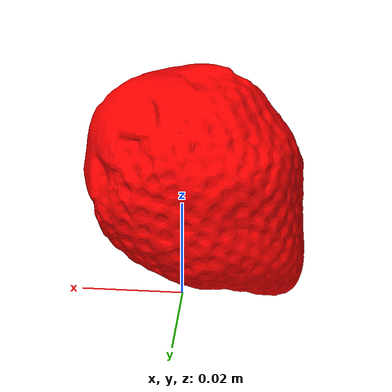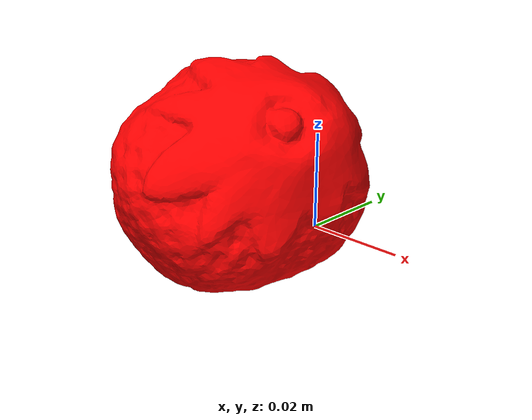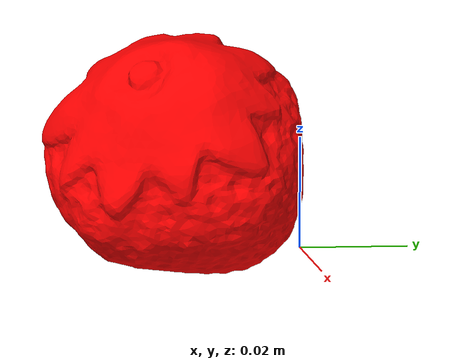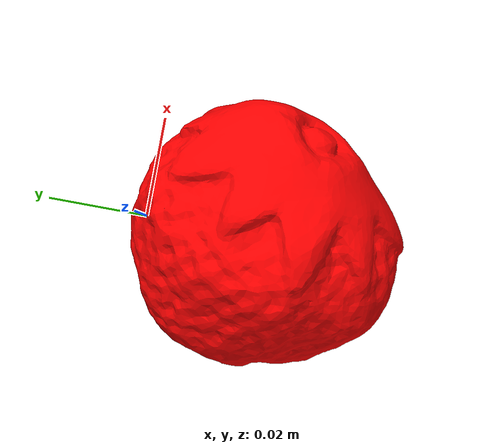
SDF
<?xml version="1.0" ?>
<sdf version="1.5">
  <model name="food_strawberry">

    <static>false</static>

    <link name="link">

      <inertial>
        <mass> 0.1 </mass>
        <pose> -1.4938700000e-03  1.5432680000e-02  2.1114490000e-02 0 0 0 </pose>
        <inertia>
          <ixx>  2.0727615080e-05 </ixx>
          <ixy> -2.0235302249e-06 </ixy>
          <ixz> -5.3860263914e-08 </ixz>
          <iyy>  2.1151037241e-05 </iyy>
          <iyz> -6.1887744607e-07 </iyz>
          <izz>  2.0897873452e-05 </izz>
        </inertia>
      </inertial>

      <collision name="collision">
        <geometry>
          <mesh>
            <uri>model://food_strawberry/meshes/textured.dae</uri>
          </mesh>
        </geometry>
        <surface>
          <friction>
            <ode>
              <mu>50.0</mu>
              <mu2>50.0</mu2>
            </ode>
          </friction>
          <contact>
          	<ode>
          		<min_depth>0.001</min_depth>
          		<max_vel>0.0</max_vel>
          	</ode>
          </contact>
        </surface>
      </collision>

      <visual name="visual">
        <geometry>
          <mesh>
            <uri>model://food_strawberry/meshes/textured.dae</uri>
          </mesh>
        </geometry>
        <material>
          <ambient>1 0 0</ambient>
          <diffuse>1 0 0</diffuse>
          <specular>1 0 0</specular>
        </material>
      </visual>

    </link>
  </model>
</sdf>
